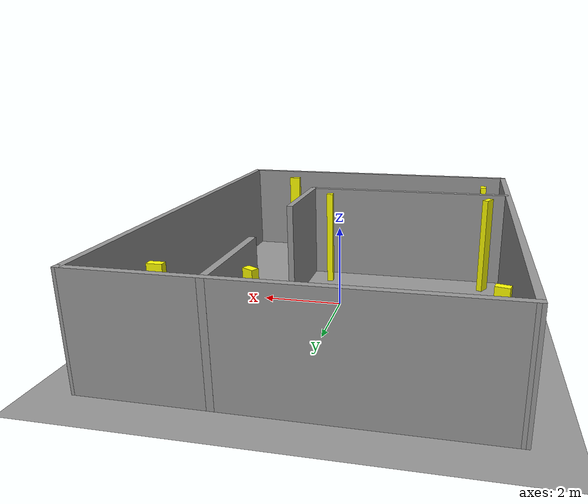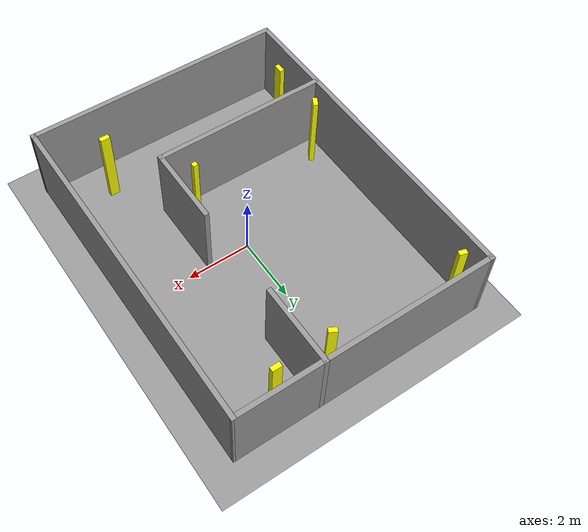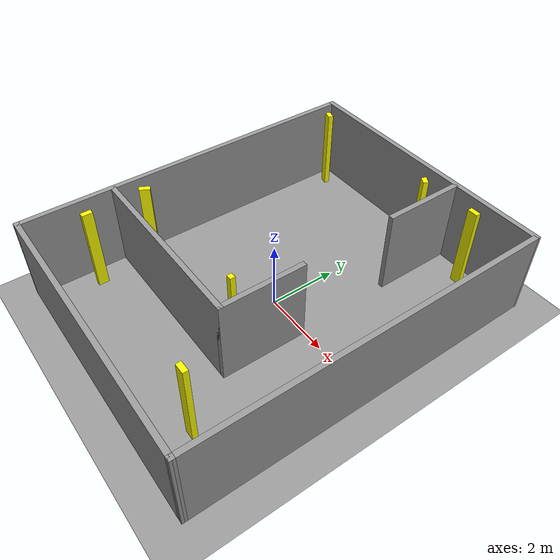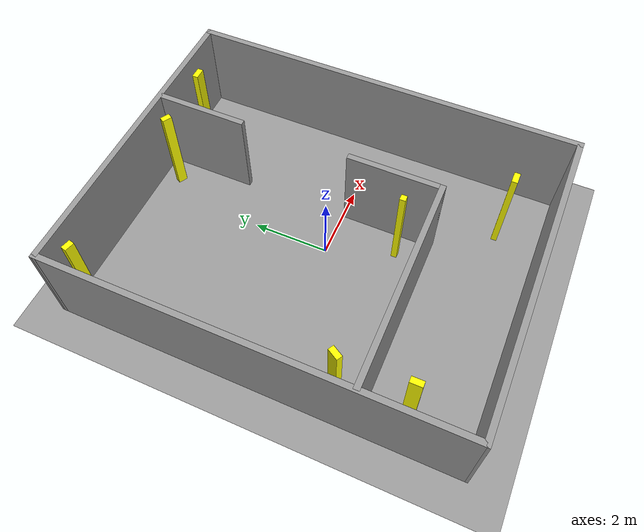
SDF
<sdf version="1.6">
 <world name="default">
  <light name="sun" type="directional">
   <pose>0 0 10 0 -0 0</pose>
   <diffuse>0.8 0.8 0.8 1</diffuse>
   <specular>0.2 0.2 0.2 1</specular>
   <attenuation>
    <range>1000</range>
    <constant>0.9</constant>
    <linear>0.01</linear>
    <quadratic>0.001</quadratic>
   </attenuation>
   <direction>0.5 0.1 -0.9</direction>
  </light>
  <scene><ambient>0.4 0.4 0.4 1</ambient><background>0.7 0.7 0.7 1</background><shadows>1</shadows></scene>
  <physics name="default_physics" default="0" type="ode">
   <max_step_size>0.01</max_step_size>
   <real_time_factor>1</real_time_factor>
   <real_time_update_rate>100</real_time_update_rate>
  </physics>
  <model name="ground_plane_0">
   <static>1</static>
   <link name="link">
    <collision name="collision">
     <geometry><plane><normal>0 0 1</normal><size>100 100</size></plane></geometry>
     <surface><friction><ode><mu>100</mu><mu2>50</mu2></ode></friction></surface>
    </collision>
    <visual name="visual">
     <cast_shadows>0</cast_shadows>
     <geometry><plane><normal>0 0 1</normal><size>100 100</size></plane></geometry>
     <material>
      <script><uri>file://media/materials/scripts/gazebo.material</uri><name>Gazebo/Grey</name></script>
     </material>
    </visual>
    <velocity_decay><linear>0</linear><angular>0</angular></velocity_decay>
   </link>
   <pose>0.497681 0 0 0 -0 0</pose>
  </model>
  <gravity>0 0 -9.8</gravity>
  <magnetic_field>6e-06 2.3e-05 -4.2e-05</magnetic_field>
  <atmosphere type="adiabatic"/>
  <spherical_coordinates>
   <surface_model>EARTH_WGS84</surface_model>
   <latitude_deg>0</latitude_deg>
   <longitude_deg>0</longitude_deg>
   <elevation>0</elevation>
   <heading_deg>0</heading_deg>
  </spherical_coordinates>
  <model name="project1">
   <pose>-0.106571 0.047196 0 0 -0 0</pose>
   <link name="Wall_0">
    <collision name="Wall_0_Collision">
     <geometry><box><size>8.16101 0.15 2.5</size></box></geometry>
     <pose>0 0 1.25 0 -0 0</pose>
    </collision>
    <visual name="Wall_0_Visual">
     <pose>0 0 1.25 0 -0 0</pose>
     <geometry><box><size>8.16101 0.15 2.5</size></box></geometry>
     <material>
      <script><uri>file://media/materials/scripts/gazebo.material</uri><name>Gazebo/Grey</name></script>
      <ambient>1 1 1 1</ambient>
     </material>
    </visual>
    <pose>-0.012429 5.19005 0 0 0 -0.001436</pose>
   </link>
   <link name="Wall_11">
    <collision name="Wall_11_Collision">
     <geometry><box><size>2.5 0.15 2.5</size></box></geometry>
     <pose>0 0 1.25 0 -0 0</pose>
    </collision>
    <visual name="Wall_11_Visual">
     <pose>0 0 1.25 0 -0 0</pose>
     <geometry><box><size>2.5 0.15 2.5</size></box></geometry>
     <material>
      <script><uri>file://media/materials/scripts/gazebo.material</uri><name>Gazebo/Grey</name></script>
      <ambient>1 1 1 1</ambient>
     </material>
    </visual>
    <pose>1.32578 4.01355 0 0 0 -1.5708</pose>
   </link>
   <link name="Wall_13">
    <collision name="Wall_13_Collision">
     <geometry><box><size>5.5 0.15 2.5</size></box></geometry>
     <pose>0 0 1.25 0 -0 0</pose>
    </collision>
    <visual name="Wall_13_Visual">
     <pose>0 0 1.25 0 -0 0</pose>
     <geometry><box><size>5.5 0.15 2.5</size></box></geometry>
     <material>
      <script><uri>file://media/materials/scripts/gazebo.material</uri><name>Gazebo/Grey</name></script>
      <ambient>1 1 1 1</ambient>
     </material>
    </visual>
    <pose>-1.28565 -2.49124 0 0 -0 0</pose>
   </link>
   <link name="Wall_14">
    <collision name="Wall_14_Collision">
     <geometry><box><size>2.5 0.15 2.5</size></box></geometry>
     <pose>0 0 1.25 0 -0 0</pose>
    </collision>
    <visual name="Wall_14_Visual">
     <pose>0 0 1.25 0 -0 0</pose>
     <geometry><box><size>2.5 0.15 2.5</size></box></geometry>
     <material>
      <script><uri>file://media/materials/scripts/gazebo.material</uri><name>Gazebo/Grey</name></script>
      <ambient>1 1 1 1</ambient>
     </material>
    </visual>
    <pose>1.38935 -1.31624 0 0 -0 1.5708</pose>
   </link>
   <link name="Wall_16">
    <collision name="Wall_16_Collision">
     <geometry><box><size>0.25 0.15 2.5</size></box></geometry>
     <pose>0 0 1.25 0 -0 0</pose>
    </collision>
    <visual name="Wall_16_Visual">
     <pose>0 0 1.25 0 -0 0</pose>
     <geometry><box><size>0.25 0.15 2.5</size></box></geometry>
     <material>
      <script><uri>file://media/materials/scripts/gazebo.material</uri><name>Gazebo/Grey</name></script>
      <ambient>1 1 0 1</ambient>
     </material>
    </visual>
    <pose>-3.50469 4.66274 0 0 0 -0.261799</pose>
   </link>
   <link name="Wall_18">
    <collision name="Wall_18_Collision">
     <geometry><box><size>0.25 0.15 2.5</size></box></geometry>
     <pose>0 0 1.25 0 -0 0</pose>
    </collision>
    <visual name="Wall_18_Visual">
     <pose>0 0 1.25 0 -0 0</pose>
     <geometry><box><size>0.25 0.15 2.5</size></box></geometry>
     <material>
      <script><uri>file://media/materials/scripts/gazebo.material</uri><name>Gazebo/Grey</name></script>
      <ambient>1 1 0 1</ambient>
     </material>
    </visual>
    <pose>0.686907 4.6248 0 0 0 -0.523599</pose>
   </link>
   <link name="Wall_20">
    <collision name="Wall_20_Collision">
     <geometry><box><size>0.16 0.15 2.5</size></box></geometry>
     <pose>0 0 1.25 0 -0 0</pose>
    </collision>
    <visual name="Wall_20_Visual">
     <pose>0 0 1.25 0 -0 0</pose>
     <geometry><box><size>0.16 0.15 2.5</size></box></geometry>
     <material>
      <script><uri>file://media/materials/scripts/gazebo.material</uri><name>Gazebo/Grey</name></script>
      <ambient>1 1 0 1</ambient>
     </material>
    </visual>
    <pose>0.735209 -1.7502 0 0 -0 0</pose>
   </link>
   <link name="Wall_23">
    <collision name="Wall_23_Collision">
     <geometry><box><size>0.3 0.15 2.5</size></box></geometry>
     <pose>0 0 1.25 0 -0 0</pose>
    </collision>
    <visual name="Wall_23_Visual">
     <pose>0 0 1.25 0 -0 0</pose>
     <geometry><box><size>0.3 0.15 2.5</size></box></geometry>
     <material>
      <script><uri>file://media/materials/scripts/gazebo.material</uri><name>Gazebo/Grey</name></script>
      <ambient>1 1 0 1</ambient>
     </material>
    </visual>
    <pose>-3.47603 -1.80822 0 0 -0 1.0472</pose>
   </link>
   <link name="Wall_25">
    <collision name="Wall_25_Collision">
     <geometry><box><size>0.3 0.15 2.5</size></box></geometry>
     <pose>0 0 1.25 0 -0 0</pose>
    </collision>
    <visual name="Wall_25_Visual">
     <pose>0 0 1.25 0 -0 0</pose>
     <geometry><box><size>0.3 0.15 2.5</size></box></geometry>
     <material>
      <script><uri>file://media/materials/scripts/gazebo.material</uri><name>Gazebo/Grey</name></script>
      <ambient>1 1 0 1</ambient>
     </material>
    </visual>
    <pose>2.42116 4.67568 0 0 -0 3.14159</pose>
   </link>
   <link name="Wall_27">
    <collision name="Wall_27_Collision">
     <geometry><box><size>0.3 0.15 2.5</size></box></geometry>
     <pose>0 0 1.25 0 -0 0</pose>
    </collision>
    <visual name="Wall_27_Visual">
     <pose>0 0 1.25 0 -0 0</pose>
     <geometry><box><size>0.3 0.15 2.5</size></box></geometry>
     <material>
      <script><uri>file://media/materials/scripts/gazebo.material</uri><name>Gazebo/Grey</name></script>
      <ambient>1 1 0 1</ambient>
     </material>
    </visual>
    <pose>2.36856 -4.00353 0 0 -0 3.14159</pose>
   </link>
   <link name="Wall_29">
    <collision name="Wall_29_Collision">
     <geometry><box><size>0.3 0.15 2.5</size></box></geometry>
     <pose>0 0 1.25 0 -0 0</pose>
    </collision>
    <visual name="Wall_29_Visual">
     <pose>0 0 1.25 0 -0 0</pose>
     <geometry><box><size>0.3 0.15 2.5</size></box></geometry>
     <material>
      <script><uri>file://media/materials/scripts/gazebo.material</uri><name>Gazebo/Grey</name></script>
      <ambient>1 1 0 1</ambient>
     </material>
    </visual>
    <pose>-3.39518 -3.53402 0 0 -0 1.5708</pose>
   </link>
   <link name="Wall_3">
    <collision name="Wall_3_Collision">
     <geometry><box><size>10.5298 0.15 2.5</size></box></geometry>
     <pose>0 0 1.25 0 -0 0</pose>
    </collision>
    <visual name="Wall_3_Visual">
     <pose>0 0 1.25 0 -0 0</pose>
     <geometry><box><size>10.5298 0.15 2.5</size></box></geometry>
     <material>
      <script><uri>file://media/materials/scripts/gazebo.material</uri><name>Gazebo/Grey</name></script>
      <ambient>1 1 1 1</ambient>
     </material>
    </visual>
    <pose>4.0055 -0.005611 0 0 0 -1.5684</pose>
   </link>
   <link name="Wall_7">
    <collision name="Wall_7_Collision">
     <geometry><box><size>10.5 0.15 2.5</size></box></geometry>
     <pose>0 0 1.25 0 -0 0</pose>
    </collision>
    <visual name="Wall_7_Visual">
     <pose>0 0 1.25 0 -0 0</pose>
     <geometry><box><size>10.5 0.15 2.5</size></box></geometry>
     <material>
      <script><uri>file://media/materials/scripts/gazebo.material</uri><name>Gazebo/Grey</name></script>
      <ambient>1 1 1 1</ambient>
     </material>
    </visual>
    <pose>-4.01793 0.020804 0 0 0 -1.5708</pose>
   </link>
   <link name="Wall_9">
    <collision name="Wall_9_Collision">
     <geometry><box><size>8.18596 0.15 2.5</size></box></geometry>
     <pose>0 0 1.25 0 -0 0</pose>
    </collision>
    <visual name="Wall_9_Visual">
     <pose>0 0 1.25 0 -0 0</pose>
     <geometry><box><size>8.18596 0.15 2.5</size></box></geometry>
     <material>
      <script><uri>file://media/materials/scripts/gazebo.material</uri><name>Gazebo/Grey</name></script>
      <ambient>1 1 1 1</ambient>
     </material>
    </visual>
    <pose>0 -5.17486 0 0 0 -0.005143</pose>
   </link>
   <static>1</static>
  </model>
 </world>
</sdf>
